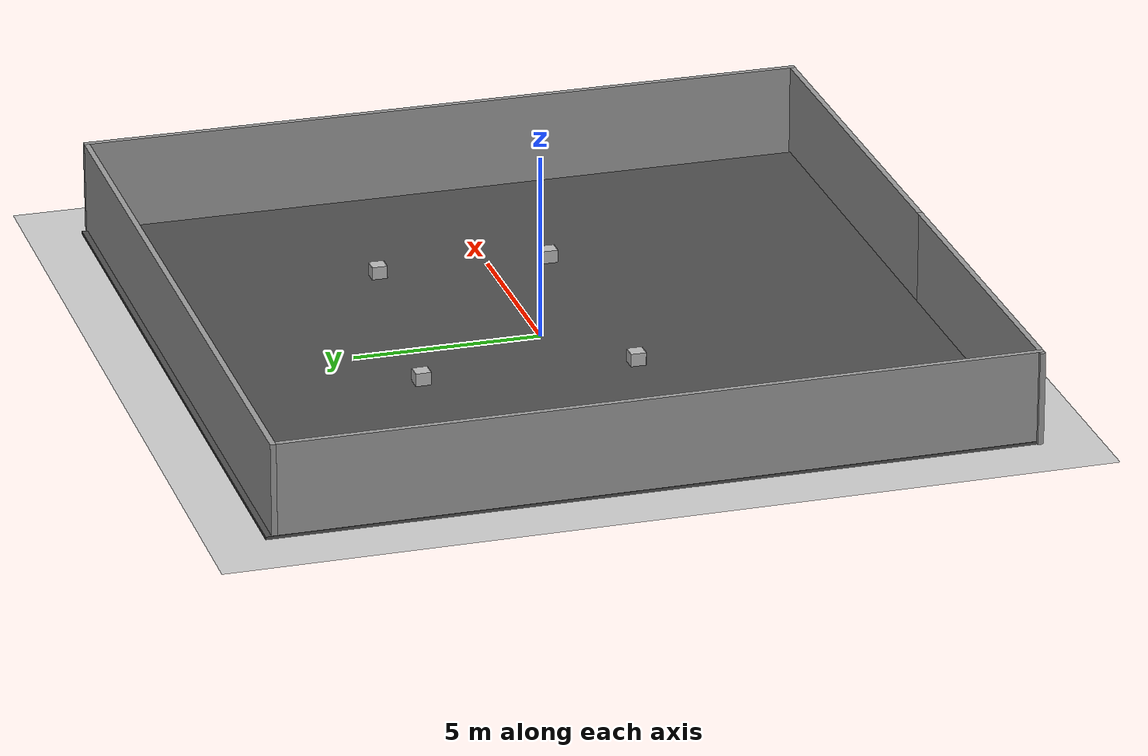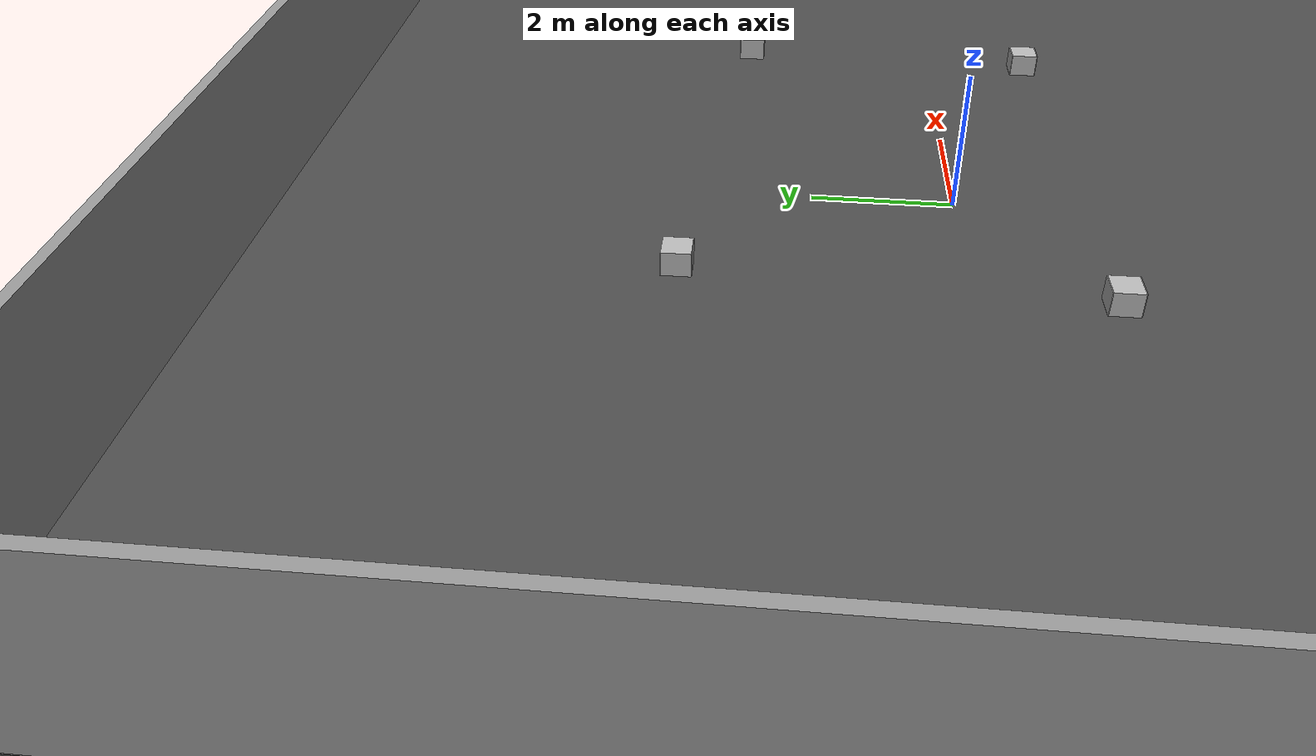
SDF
<sdf version="1.6">
 <world name="default">
  <scene><ambient>0.4 0.4 0.4 1.0</ambient><shadows>0</shadows></scene>
  <light name="sun" type="directional">
   <pose>0 0 10 0 -0 0</pose>
   <diffuse>0.8 0.8 0.8 1</diffuse>
   <specular>0.2 0.2 0.2 1</specular>
   <attenuation>
    <range>1000</range>
    <constant>0.9</constant>
    <linear>0.01</linear>
    <quadratic>0.001</quadratic>
   </attenuation>
   <direction>-0.5 0.1 -0.9</direction>
  </light>
  <model name="ground_plane">
   <static>1</static>
   <link name="link">
    <collision name="collision">
     <geometry><plane><normal>0 0 1</normal><size>100 100</size></plane></geometry>
     <surface><friction><ode><mu>100</mu><mu2>50</mu2></ode></friction></surface>
    </collision>
    <visual name="visual">
     <cast_shadows>0</cast_shadows>
     <geometry><plane><normal>0 0 1</normal><size>100 100</size></plane></geometry>
     <material>
      <script><uri>file://media/materials/scripts/gazebo.material</uri><name>Gazebo/Grey</name></script>
     </material>
    </visual>
    <velocity_decay><linear>0</linear><angular>0</angular></velocity_decay>
   </link>
  </model>
  <physics name="default_physics" default="0" type="ode">
   <max_step_size>0.01</max_step_size>
   <real_time_factor>1</real_time_factor>
   <real_time_update_rate>100</real_time_update_rate>
  </physics>
  <scene><ambient>0.4 0.4 0.4 1</ambient><background>0.7 0.7 0.7 1</background><shadows>1</shadows></scene>
  <model name="asphalt_plane">
   <static>1</static>
   <link name="link">
    <collision name="collision"><geometry><box><size>20 20 0.1</size></box></geometry></collision>
    <visual name="visual">
     <cast_shadows>0</cast_shadows>
     <geometry><box><size>20 20 0.1</size></box></geometry>
     <material>
      <script>
       <uri>model://asphalt_plane/materials/scripts</uri>
       <uri>model://asphalt_plane/materials/textures</uri>
       <name>vrc/asphalt</name>
      </script>
     </material>
    </visual>
    <velocity_decay><linear>0</linear><angular>0</angular></velocity_decay>
   </link>
   <pose>0.076733 -0.110379 0 0 -0 0</pose>
  </model>
  <gravity>0 0 -9.8</gravity>
  <magnetic_field>6e-06 2.3e-05 -4.2e-05</magnetic_field>
  <atmosphere type="adiabatic"/>
  <spherical_coordinates>
   <surface_model>EARTH_WGS84</surface_model>
   <latitude_deg>0</latitude_deg>
   <longitude_deg>0</longitude_deg>
   <elevation>0</elevation>
   <heading_deg>0</heading_deg>
  </spherical_coordinates>
  <model name="arTAG_0">
   <pose>4.66087 -1.58277 0.199991 -3e-06 4.4e-05 0.000181</pose>
   <link name="box">
    <collision name="collision"><geometry><box><size>0.4 0.4 0.4</size></box></geometry></collision>
    <visual name="visual">
     <geometry><box><size>0.4 0.4 0.4</size></box></geometry>
     <material>
      <script>
       <uri>model://arTAG_0/materials/scripts</uri>
       <uri>model://arTAG_0/materials/textures</uri>
       <name>arTAG_0/Image</name>
      </script>
     </material>
    </visual>
    <inertial>
     <inertia><ixx>1</ixx><ixy>0</ixy><ixz>0</ixz><iyy>1</iyy><iyz>0</iyz><izz>1</izz></inertia>
     <mass>1</mass>
    </inertial>
   </link>
   <link name="right_cover">
    <pose>0 -0.205 0 0 -0 0</pose>
    <collision name="collision"><geometry><box><size>0.4 0.01 0.4</size></box></geometry></collision>
    <visual name="visual"><geometry><box><size>0.4 0.01 0.4</size></box></geometry></visual>
    <inertial>
     <inertia><ixx>1</ixx><ixy>0</ixy><ixz>0</ixz><iyy>1</iyy><iyz>0</iyz><izz>1</izz></inertia>
     <mass>1</mass>
    </inertial>
   </link>
   <link name="left_cover">
    <pose>0 0.205 0 0 -0 0</pose>
    <collision name="collision"><geometry><box><size>0.4 0.01 0.4</size></box></geometry></collision>
    <visual name="visual"><geometry><box><size>0.4 0.01 0.4</size></box></geometry></visual>
    <inertial>
     <inertia><ixx>1</ixx><ixy>0</ixy><ixz>0</ixz><iyy>1</iyy><iyz>0</iyz><izz>1</izz></inertia>
     <mass>1</mass>
    </inertial>
   </link>
   <joint name="box_left" type="fixed"><parent>box</parent><child>left_cover</child></joint>
   <joint name="box_right" type="fixed"><parent>box</parent><child>right_cover</child></joint>
  </model>
  <model name="arTAG_1">
   <pose>4.89429 3.05409 0.200019 3e-06 9.2e-05 0.00012</pose>
   <link name="box">
    <collision name="collision"><geometry><box><size>0.4 0.4 0.4</size></box></geometry></collision>
    <visual name="visual">
     <geometry><box><size>0.4 0.4 0.4</size></box></geometry>
     <material>
      <script>
       <uri>model://arTAG_1/materials/scripts</uri>
       <uri>model://arTAG_1/materials/textures</uri>
       <name>arTAG_1/Image</name>
      </script>
     </material>
    </visual>
    <inertial>
     <inertia><ixx>1</ixx><ixy>0</ixy><ixz>0</ixz><iyy>1</iyy><iyz>0</iyz><izz>1</izz></inertia>
     <mass>1</mass>
    </inertial>
   </link>
   <link name="right_cover">
    <pose>0 -0.205 0 0 -0 0</pose>
    <collision name="collision"><geometry><box><size>0.4 0.01 0.4</size></box></geometry></collision>
    <visual name="visual"><geometry><box><size>0.4 0.01 0.4</size></box></geometry></visual>
    <inertial>
     <inertia><ixx>1</ixx><ixy>0</ixy><ixz>0</ixz><iyy>1</iyy><iyz>0</iyz><izz>1</izz></inertia>
     <mass>1</mass>
    </inertial>
   </link>
   <link name="left_cover">
    <pose>0 0.205 0 0 -0 0</pose>
    <collision name="collision"><geometry><box><size>0.4 0.01 0.4</size></box></geometry></collision>
    <visual name="visual"><geometry><box><size>0.4 0.01 0.4</size></box></geometry></visual>
    <inertial>
     <inertia><ixx>1</ixx><ixy>0</ixy><ixz>0</ixz><iyy>1</iyy><iyz>0</iyz><izz>1</izz></inertia>
     <mass>1</mass>
    </inertial>
   </link>
   <joint name="box_left" type="fixed"><parent>box</parent><child>left_cover</child></joint>
   <joint name="box_right" type="fixed"><parent>box</parent><child>right_cover</child></joint>
  </model>
  <model name="arTAG_2">
   <pose>-2.43803 -1.86847 0.199947 0.000143 0.000128 9e-05</pose>
   <link name="box">
    <collision name="collision"><geometry><box><size>0.4 0.4 0.4</size></box></geometry></collision>
    <visual name="visual">
     <geometry><box><size>0.4 0.4 0.4</size></box></geometry>
     <material>
      <script>
       <uri>model://arTAG_2/materials/scripts</uri>
       <uri>model://arTAG_2/materials/textures</uri>
       <name>arTAG_2/Image</name>
      </script>
     </material>
    </visual>
    <inertial>
     <inertia><ixx>1</ixx><ixy>0</ixy><ixz>0</ixz><iyy>1</iyy><iyz>0</iyz><izz>1</izz></inertia>
     <mass>1</mass>
    </inertial>
   </link>
   <link name="right_cover">
    <pose>0 -0.205 0 0 -0 0</pose>
    <collision name="collision"><geometry><box><size>0.4 0.01 0.4</size></box></geometry></collision>
    <visual name="visual"><geometry><box><size>0.4 0.01 0.4</size></box></geometry></visual>
    <inertial>
     <inertia><ixx>1</ixx><ixy>0</ixy><ixz>0</ixz><iyy>1</iyy><iyz>0</iyz><izz>1</izz></inertia>
     <mass>1</mass>
    </inertial>
   </link>
   <link name="left_cover">
    <pose>0 0.205 0 0 -0 0</pose>
    <collision name="collision"><geometry><box><size>0.4 0.01 0.4</size></box></geometry></collision>
    <visual name="visual"><geometry><box><size>0.4 0.01 0.4</size></box></geometry></visual>
    <inertial>
     <inertia><ixx>1</ixx><ixy>0</ixy><ixz>0</ixz><iyy>1</iyy><iyz>0</iyz><izz>1</izz></inertia>
     <mass>1</mass>
    </inertial>
   </link>
   <joint name="box_left" type="fixed"><parent>box</parent><child>left_cover</child></joint>
   <joint name="box_right" type="fixed"><parent>box</parent><child>right_cover</child></joint>
  </model>
  <model name="arTAG_3">
   <pose>-2.08211 3.77603 0.200022 -0.000112 -2e-06 -3e-06</pose>
   <link name="box">
    <collision name="collision"><geometry><box><size>0.4 0.4 0.4</size></box></geometry></collision>
    <visual name="visual">
     <geometry><box><size>0.4 0.4 0.4</size></box></geometry>
     <material>
      <script>
       <uri>model://arTAG_3/materials/scripts</uri>
       <uri>model://arTAG_3/materials/textures</uri>
       <name>arTAG_3/Image</name>
      </script>
     </material>
    </visual>
    <inertial>
     <inertia><ixx>1</ixx><ixy>0</ixy><ixz>0</ixz><iyy>1</iyy><iyz>0</iyz><izz>1</izz></inertia>
     <mass>1</mass>
    </inertial>
   </link>
   <link name="right_cover">
    <pose>0 -0.205 0 0 -0 0</pose>
    <collision name="collision"><geometry><box><size>0.4 0.01 0.4</size></box></geometry></collision>
    <visual name="visual"><geometry><box><size>0.4 0.01 0.4</size></box></geometry></visual>
    <inertial>
     <inertia><ixx>1</ixx><ixy>0</ixy><ixz>0</ixz><iyy>1</iyy><iyz>0</iyz><izz>1</izz></inertia>
     <mass>1</mass>
    </inertial>
   </link>
   <link name="left_cover">
    <pose>0 0.205 0 0 -0 0</pose>
    <collision name="collision"><geometry><box><size>0.4 0.01 0.4</size></box></geometry></collision>
    <visual name="visual"><geometry><box><size>0.4 0.01 0.4</size></box></geometry></visual>
    <inertial>
     <inertia><ixx>1</ixx><ixy>0</ixy><ixz>0</ixz><iyy>1</iyy><iyz>0</iyz><izz>1</izz></inertia>
     <mass>1</mass>
    </inertial>
   </link>
   <joint name="box_left" type="fixed"><parent>box</parent><child>left_cover</child></joint>
   <joint name="box_right" type="fixed"><parent>box</parent><child>right_cover</child></joint>
  </model>
  <model name="wall">
   <pose>0.161145 -0.263983 0 0 -0 0</pose>
   <link name="Wall_19">
    <collision name="Wall_19_Collision">
     <geometry><box><size>9.5 0.15 2.5</size></box></geometry>
     <pose>0 0 1.25 0 -0 0</pose>
    </collision>
    <visual name="Wall_19_Visual">
     <pose>0 0 1.25 0 -0 0</pose>
     <geometry><box><size>9.5 0.15 2.5</size></box></geometry>
     <material>
      <script><uri>file://media/materials/scripts/gazebo.material</uri><name>Gazebo/Grey</name></script>
      <ambient>1 1 1 1</ambient>
     </material>
     <meta><layer>0</layer></meta>
    </visual>
    <pose>-5.425 -9.925 0 0 -0 3.14159</pose>
   </link>
   <link name="Wall_21">
    <collision name="Wall_21_Collision">
     <geometry><box><size>11 0.15 2.5</size></box></geometry>
     <pose>0 0 1.25 0 -0 0</pose>
    </collision>
    <visual name="Wall_21_Visual">
     <pose>0 0 1.25 0 -0 0</pose>
     <geometry><box><size>11 0.15 2.5</size></box></geometry>
     <material>
      <script><uri>file://media/materials/scripts/gazebo.material</uri><name>Gazebo/Grey</name></script>
      <ambient>1 1 1 1</ambient>
     </material>
     <meta><layer>0</layer></meta>
    </visual>
    <pose>4.675 -9.925 0 0 -0 0</pose>
   </link>
   <link name="Wall_22">
    <collision name="Wall_22_Collision">
     <geometry><box><size>20 0.15 2.5</size></box></geometry>
     <pose>0 0 1.25 0 -0 0</pose>
    </collision>
    <visual name="Wall_22_Visual">
     <pose>0 0 1.25 0 -0 0</pose>
     <geometry><box><size>20 0.15 2.5</size></box></geometry>
     <material>
      <script><uri>file://media/materials/scripts/gazebo.material</uri><name>Gazebo/Grey</name></script>
      <ambient>1 1 1 1</ambient>
     </material>
     <meta><layer>0</layer></meta>
    </visual>
    <pose>10.1 0 0 0 -0 1.5708</pose>
   </link>
   <link name="Wall_23">
    <collision name="Wall_23_Collision">
     <geometry><box><size>20.25 0.15 2.5</size></box></geometry>
     <pose>0 0 1.25 0 -0 0</pose>
    </collision>
    <visual name="Wall_23_Visual">
     <pose>0 0 1.25 0 -0 0</pose>
     <geometry><box><size>20.25 0.15 2.5</size></box></geometry>
     <material>
      <script><uri>file://media/materials/scripts/gazebo.material</uri><name>Gazebo/Grey</name></script>
      <ambient>1 1 1 1</ambient>
     </material>
     <meta><layer>0</layer></meta>
    </visual>
    <pose>0.049999 9.925 0 0 -0 3.14159</pose>
   </link>
   <link name="Wall_24">
    <collision name="Wall_24_Collision">
     <geometry><box><size>20 0.15 2.5</size></box></geometry>
     <pose>0 0 1.25 0 -0 0</pose>
    </collision>
    <visual name="Wall_24_Visual">
     <pose>0 0 1.25 0 -0 0</pose>
     <geometry><box><size>20 0.15 2.5</size></box></geometry>
     <material>
      <script><uri>file://media/materials/scripts/gazebo.material</uri><name>Gazebo/Grey</name></script>
      <ambient>1 1 1 1</ambient>
     </material>
     <meta><layer>0</layer></meta>
    </visual>
    <pose>-10 0 0 0 0 -1.5708</pose>
   </link>
   <static>1</static>
  </model>
 </world>
</sdf>
